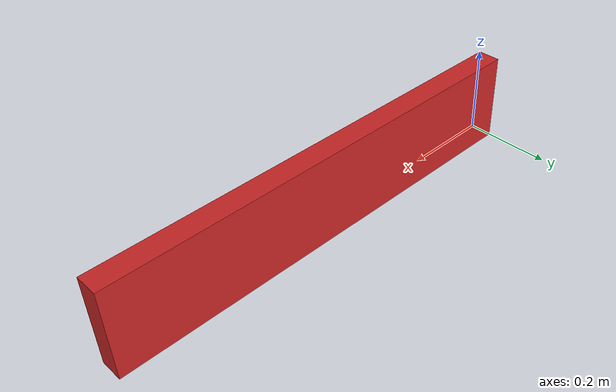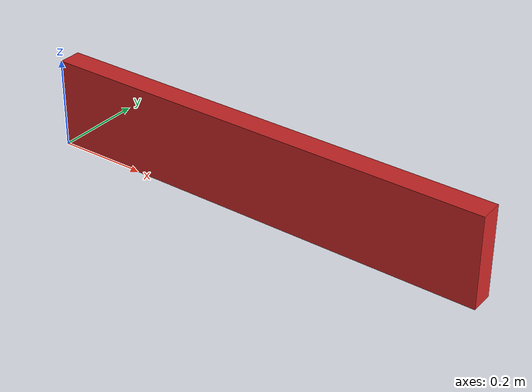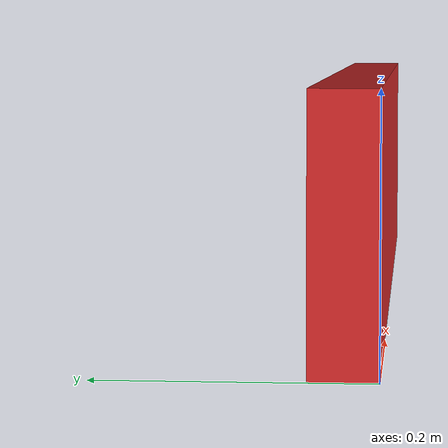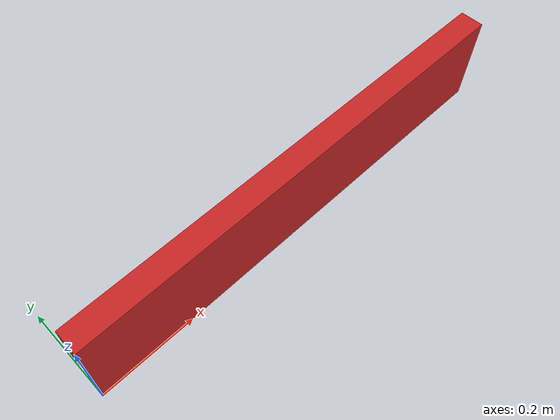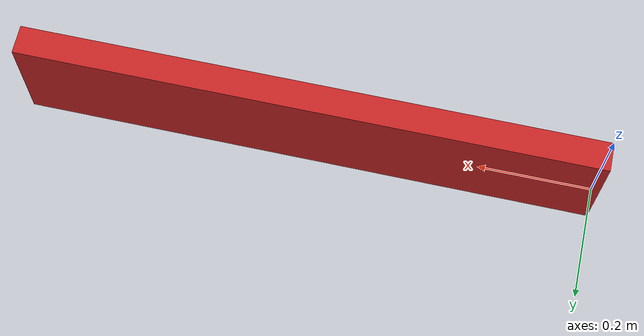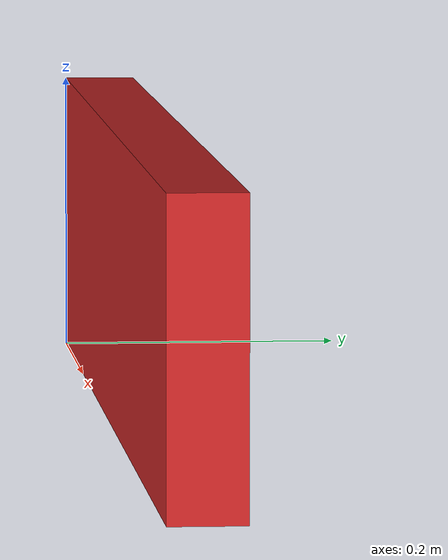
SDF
<?xml version="1.0" ?>
<sdf version="1.7">
	<model name="wall_Red">
		<link name="link">
			<visual name="visual">

				<pose>0.5 0.025 0.1 0 0 0</pose>

				<geometry>
					<box>
						<size>1 0.05 0.2</size>
					</box>
				</geometry>

				<material>
					<script>
						<uri>file://media/materials/scripts/gazebo.material</uri>
						<name>Gazebo/Red</name>
					</script>
				</material>
			</visual>
			<collision name="collision">

				<pose>0.5 0.025 0.1 0 0 0</pose>

				<geometry>
					<box>
						<size>1 0.05 0.2</size>
					</box>
				</geometry>

				<laser_retro>2</laser_retro>
			</collision>
			<sensor name='sensor_contact_wall' type='contact'>
				<contact><collision>collision</collision></contact>
			</sensor>
		</link>
		<plugin filename="libTouchPlugin.so" name='plugin_touch'>
			<sensor>sensor_contact_wall</sensor>
			<target>tb3</target>
			<namespace>finish_wall</namespace>
			<time>0.00001</time>
			<enabled>true</enabled>
		</plugin>
	</model>
</sdf>
